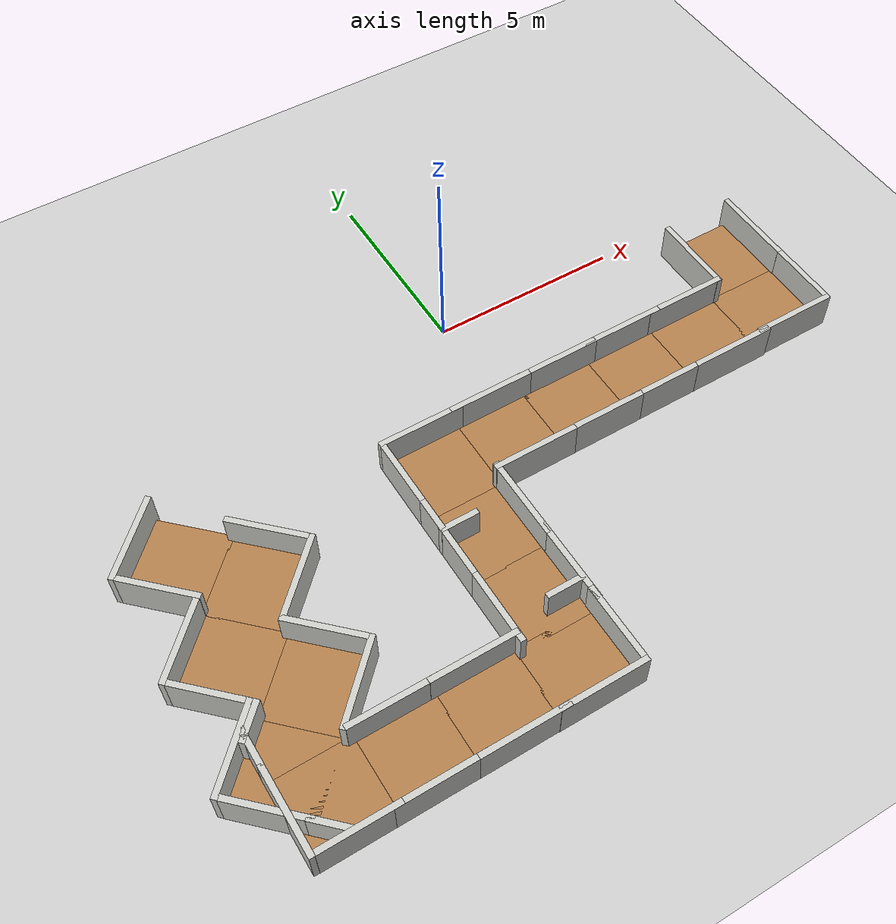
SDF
<sdf version="1.6">
 <world name="default">
  <model name="ground_plane">
   <static>1</static>
   <link name="link">
    <collision name="collision">
     <geometry><plane><normal>0 0 1</normal><size>100 100</size></plane></geometry>
     <surface><friction><ode><mu>100</mu><mu2>50</mu2></ode></friction></surface>
    </collision>
    <visual name="visual">
     <cast_shadows>0</cast_shadows>
     <geometry><plane><normal>0 0 1</normal><size>100 100</size></plane></geometry>
     <material>
      <script><uri>file://media/materials/scripts/gazebo.material</uri><name>Gazebo/Grey</name></script>
     </material>
    </visual>
   </link>
  </model>
  <model name="pg_maze_straight">
   <pose>1.51595 -3.89785 0 0 -0 0</pose>
   <link name="Wall_0">
    <collision name="Wall_0_Collision">
     <geometry><box><size>2.01 2 0.2</size></box></geometry>
     <pose>0 0 0.1 0 -0 0</pose>
    </collision>
    <visual name="Wall_0_Visual">
     <pose>0 0 0.1 0 -0 0</pose>
     <geometry><box><size>2.01 2 0.2</size></box></geometry>
     <material>
      <script><uri>file://media/materials/scripts/gazebo.material</uri><name>Gazebo/Wood</name></script>
      <ambient>1 1 1 1</ambient>
     </material>
     <meta><layer>0</layer></meta>
    </visual>
    <pose>0.003 -0.001 0 0 -0 0</pose>
   </link>
   <link name="Wall_2">
    <collision name="Wall_2_Collision">
     <geometry><box><size>2.25 0.15 1</size></box></geometry>
     <pose>0 0 0.5 0 -0 0</pose>
    </collision>
    <visual name="Wall_2_Visual">
     <pose>0 0 0.5 0 -0 0</pose>
     <geometry><box><size>2.25 0.15 1</size></box></geometry>
     <material>
      <script><uri>file://media/materials/scripts/gazebo.material</uri><name>Gazebo/CeilingTiled</name></script>
      <ambient>0.996078 0.47451 0.0196078 1</ambient>
     </material>
     <meta><layer>0</layer></meta>
    </visual>
    <pose>-0.005 0.985 0 0 -0 0</pose>
   </link>
   <link name="Wall_4">
    <collision name="Wall_4_Collision">
     <geometry><box><size>2.25 0.15 1</size></box></geometry>
     <pose>0 0 0.5 0 -0 0</pose>
    </collision>
    <visual name="Wall_4_Visual">
     <pose>0 0 0.5 0 -0 0</pose>
     <geometry><box><size>2.25 0.15 1</size></box></geometry>
     <material>
      <script><uri>file://media/materials/scripts/gazebo.material</uri><name>Gazebo/CeilingTiled</name></script>
      <ambient>0.996078 0.47451 0.0196078 1</ambient>
     </material>
     <meta><layer>0</layer></meta>
    </visual>
    <pose>0.005 -0.985 0 0 -0 0</pose>
   </link>
   <static>1</static>
  </model>
  <model name="pg_maze_straight_0">
   <pose>-0.420246 -3.89882 0 0 -0 0</pose>
   <link name="Wall_0">
    <collision name="Wall_0_Collision">
     <geometry><box><size>2.01 2 0.2</size></box></geometry>
     <pose>0 0 0.1 0 -0 0</pose>
    </collision>
    <visual name="Wall_0_Visual">
     <pose>0 0 0.1 0 -0 0</pose>
     <geometry><box><size>2.01 2 0.2</size></box></geometry>
     <material>
      <script><uri>file://media/materials/scripts/gazebo.material</uri><name>Gazebo/Wood</name></script>
      <ambient>1 1 1 1</ambient>
     </material>
     <meta><layer>0</layer></meta>
    </visual>
    <pose>0.003 -0.001 0 0 -0 0</pose>
   </link>
   <link name="Wall_2">
    <collision name="Wall_2_Collision">
     <geometry><box><size>2.25 0.15 1</size></box></geometry>
     <pose>0 0 0.5 0 -0 0</pose>
    </collision>
    <visual name="Wall_2_Visual">
     <pose>0 0 0.5 0 -0 0</pose>
     <geometry><box><size>2.25 0.15 1</size></box></geometry>
     <material>
      <script><uri>file://media/materials/scripts/gazebo.material</uri><name>Gazebo/CeilingTiled</name></script>
      <ambient>0.996078 0.47451 0.0196078 1</ambient>
     </material>
     <meta><layer>0</layer></meta>
    </visual>
    <pose>-0.005 0.985 0 0 -0 0</pose>
   </link>
   <link name="Wall_4">
    <collision name="Wall_4_Collision">
     <geometry><box><size>2.25 0.15 1</size></box></geometry>
     <pose>0 0 0.5 0 -0 0</pose>
    </collision>
    <visual name="Wall_4_Visual">
     <pose>0 0 0.5 0 -0 0</pose>
     <geometry><box><size>2.25 0.15 1</size></box></geometry>
     <material>
      <script><uri>file://media/materials/scripts/gazebo.material</uri><name>Gazebo/CeilingTiled</name></script>
      <ambient>0.996078 0.47451 0.0196078 1</ambient>
     </material>
     <meta><layer>0</layer></meta>
    </visual>
    <pose>0.005 -0.985 0 0 -0 0</pose>
   </link>
   <static>1</static>
  </model>
  <model name="pg_maze_corner">
   <pose>-2.37432 -3.9093 0 0 -0 0</pose>
   <link name="Wall_0">
    <collision name="Wall_0_Collision">
     <geometry><box><size>2.01 2 0.2</size></box></geometry>
     <pose>0 0 0.1 0 -0 0</pose>
    </collision>
    <visual name="Wall_0_Visual">
     <pose>0 0 0.1 0 -0 0</pose>
     <geometry><box><size>2.01 2 0.2</size></box></geometry>
     <material>
      <script><uri>file://media/materials/scripts/gazebo.material</uri><name>Gazebo/Wood</name></script>
      <ambient>1 1 1 1</ambient>
     </material>
     <meta><layer>0</layer></meta>
    </visual>
    <pose>0.009575 0.005575 0 0 -0 0</pose>
   </link>
   <link name="Wall_2">
    <collision name="Wall_2_Collision">
     <geometry><box><size>2.25 0.15 1</size></box></geometry>
     <pose>0 0 0.5 0 -0 0</pose>
    </collision>
    <visual name="Wall_2_Visual">
     <pose>0 0 0.5 0 -0 0</pose>
     <geometry><box><size>2.25 0.15 1</size></box></geometry>
     <material>
      <script><uri>file://media/materials/scripts/gazebo.material</uri><name>Gazebo/CeilingTiled</name></script>
      <ambient>0.996078 0.47451 0.0196078 1</ambient>
     </material>
     <meta><layer>0</layer></meta>
    </visual>
    <pose>0.001575 0.991575 0 0 -0 0</pose>
   </link>
   <link name="Wall_4">
    <collision name="Wall_4_Collision">
     <geometry><box><size>2 0.15 1</size></box></geometry>
     <pose>0 0 0.5 0 -0 0</pose>
    </collision>
    <visual name="Wall_4_Visual">
     <pose>0 0 0.5 0 -0 0</pose>
     <geometry><box><size>2 0.15 1</size></box></geometry>
     <material>
      <script><uri>file://media/materials/scripts/gazebo.material</uri><name>Gazebo/CeilingTiled</name></script>
      <ambient>0.996078 0.47451 0.0196078 1</ambient>
     </material>
     <meta><layer>0</layer></meta>
    </visual>
    <pose>-1.05157 -0.066575 0 0 -0 1.5708</pose>
   </link>
   <static>1</static>
  </model>
  <model name="pg_maze_straight_1">
   <pose>-2.44128 -5.90392 0 0 -0 1.5708</pose>
   <link name="Wall_0">
    <collision name="Wall_0_Collision">
     <geometry><box><size>2.01 2 0.2</size></box></geometry>
     <pose>0 0 0.1 0 -0 0</pose>
    </collision>
    <visual name="Wall_0_Visual">
     <pose>0 0 0.1 0 -0 0</pose>
     <geometry><box><size>2.01 2 0.2</size></box></geometry>
     <material>
      <script><uri>file://media/materials/scripts/gazebo.material</uri><name>Gazebo/Wood</name></script>
      <ambient>1 1 1 1</ambient>
     </material>
     <meta><layer>0</layer></meta>
    </visual>
    <pose>0.003 -0.001 0 0 -0 0</pose>
   </link>
   <link name="Wall_2">
    <collision name="Wall_2_Collision">
     <geometry><box><size>2.25 0.15 1</size></box></geometry>
     <pose>0 0 0.5 0 -0 0</pose>
    </collision>
    <visual name="Wall_2_Visual">
     <pose>0 0 0.5 0 -0 0</pose>
     <geometry><box><size>2.25 0.15 1</size></box></geometry>
     <material>
      <script><uri>file://media/materials/scripts/gazebo.material</uri><name>Gazebo/CeilingTiled</name></script>
      <ambient>0.996078 0.47451 0.0196078 1</ambient>
     </material>
     <meta><layer>0</layer></meta>
    </visual>
    <pose>-0.005 0.985 0 0 -0 0</pose>
   </link>
   <link name="Wall_4">
    <collision name="Wall_4_Collision">
     <geometry><box><size>2.25 0.15 1</size></box></geometry>
     <pose>0 0 0.5 0 -0 0</pose>
    </collision>
    <visual name="Wall_4_Visual">
     <pose>0 0 0.5 0 -0 0</pose>
     <geometry><box><size>2.25 0.15 1</size></box></geometry>
     <material>
      <script><uri>file://media/materials/scripts/gazebo.material</uri><name>Gazebo/CeilingTiled</name></script>
      <ambient>0.996078 0.47451 0.0196078 1</ambient>
     </material>
     <meta><layer>0</layer></meta>
    </visual>
    <pose>0.005 -0.985 0 0 -0 0</pose>
   </link>
   <static>1</static>
  </model>
  <model name="pg_maze_straight_1_clone">
   <pose>-2.44005 -7.87477 0 0 -0 1.5708</pose>
   <link name="Wall_0">
    <collision name="Wall_0_Collision">
     <geometry><box><size>2.01 2 0.2</size></box></geometry>
     <pose>0 0 0.1 0 -0 0</pose>
    </collision>
    <visual name="Wall_0_Visual">
     <pose>0 0 0.1 0 -0 0</pose>
     <geometry><box><size>2.01 2 0.2</size></box></geometry>
     <material>
      <script><uri>file://media/materials/scripts/gazebo.material</uri><name>Gazebo/Wood</name></script>
      <ambient>1 1 1 1</ambient>
     </material>
     <meta><layer>0</layer></meta>
    </visual>
    <pose>0.003 -0.001 0 0 -0 0</pose>
   </link>
   <link name="Wall_2">
    <collision name="Wall_2_Collision">
     <geometry><box><size>2.25 0.15 1</size></box></geometry>
     <pose>0 0 0.5 0 -0 0</pose>
    </collision>
    <visual name="Wall_2_Visual">
     <pose>0 0 0.5 0 -0 0</pose>
     <geometry><box><size>2.25 0.15 1</size></box></geometry>
     <material>
      <script><uri>file://media/materials/scripts/gazebo.material</uri><name>Gazebo/CeilingTiled</name></script>
      <ambient>0.996078 0.47451 0.0196078 1</ambient>
     </material>
     <meta><layer>0</layer></meta>
    </visual>
    <pose>-0.005 0.985 0 0 -0 0</pose>
   </link>
   <link name="Wall_4">
    <collision name="Wall_4_Collision">
     <geometry><box><size>2.25 0.15 1</size></box></geometry>
     <pose>0 0 0.5 0 -0 0</pose>
    </collision>
    <visual name="Wall_4_Visual">
     <pose>0 0 0.5 0 -0 0</pose>
     <geometry><box><size>2.25 0.15 1</size></box></geometry>
     <material>
      <script><uri>file://media/materials/scripts/gazebo.material</uri><name>Gazebo/CeilingTiled</name></script>
      <ambient>0.996078 0.47451 0.0196078 1</ambient>
     </material>
     <meta><layer>0</layer></meta>
    </visual>
    <pose>0.005 -0.985 0 0 -0 0</pose>
   </link>
   <static>1</static>
  </model>
  <model name="pg_maze_corner_0">
   <pose>-2.51891 -9.72043 0 0 0 -3.14159</pose>
   <link name="Wall_0">
    <collision name="Wall_0_Collision">
     <geometry><box><size>2.01 2 0.2</size></box></geometry>
     <pose>0 0 0.1 0 -0 0</pose>
    </collision>
    <visual name="Wall_0_Visual">
     <pose>0 0 0.1 0 -0 0</pose>
     <geometry><box><size>2.01 2 0.2</size></box></geometry>
     <material>
      <script><uri>file://media/materials/scripts/gazebo.material</uri><name>Gazebo/Wood</name></script>
      <ambient>1 1 1 1</ambient>
     </material>
     <meta><layer>0</layer></meta>
    </visual>
    <pose>0.009575 0.005575 0 0 -0 0</pose>
   </link>
   <link name="Wall_2">
    <collision name="Wall_2_Collision">
     <geometry><box><size>2.25 0.15 1</size></box></geometry>
     <pose>0 0 0.5 0 -0 0</pose>
    </collision>
    <visual name="Wall_2_Visual">
     <pose>0 0 0.5 0 -0 0</pose>
     <geometry><box><size>2.25 0.15 1</size></box></geometry>
     <material>
      <script><uri>file://media/materials/scripts/gazebo.material</uri><name>Gazebo/CeilingTiled</name></script>
      <ambient>0.996078 0.47451 0.0196078 1</ambient>
     </material>
     <meta><layer>0</layer></meta>
    </visual>
    <pose>0.001575 0.991575 0 0 -0 0</pose>
   </link>
   <link name="Wall_4">
    <collision name="Wall_4_Collision">
     <geometry><box><size>2 0.15 1</size></box></geometry>
     <pose>0 0 0.5 0 -0 0</pose>
    </collision>
    <visual name="Wall_4_Visual">
     <pose>0 0 0.5 0 -0 0</pose>
     <geometry><box><size>2 0.15 1</size></box></geometry>
     <material>
      <script><uri>file://media/materials/scripts/gazebo.material</uri><name>Gazebo/CeilingTiled</name></script>
      <ambient>0.996078 0.47451 0.0196078 1</ambient>
     </material>
     <meta><layer>0</layer></meta>
    </visual>
    <pose>-1.05157 -0.066575 0 0 -0 1.5708</pose>
   </link>
   <static>1</static>
  </model>
  <model name="pg_maze_obstacle">
   <pose>-3.00422 -5.68975 0 0 -0 0</pose>
   <link name="Wall_2">
    <collision name="Wall_2_Collision">
     <geometry><box><size>1 0.15 1</size></box></geometry>
     <pose>0 0 0.5 0 -0 0</pose>
    </collision>
    <visual name="Wall_2_Visual">
     <pose>0 0 0.5 0 -0 0</pose>
     <geometry><box><size>1 0.15 1</size></box></geometry>
     <material>
      <script><uri>file://media/materials/scripts/gazebo.material</uri><name>Gazebo/CeilingTiled</name></script>
      <ambient>0.996078 0.47451 0.0196078 1</ambient>
     </material>
     <meta><layer>0</layer></meta>
    </visual>
   </link>
   <static>1</static>
  </model>
  <model name="pg_maze_obstacle_0">
   <pose>-1.9083 -8.35012 0 0 -0 0</pose>
   <link name="Wall_2">
    <collision name="Wall_2_Collision">
     <geometry><box><size>1 0.15 1</size></box></geometry>
     <pose>0 0 0.5 0 -0 0</pose>
    </collision>
    <visual name="Wall_2_Visual">
     <pose>0 0 0.5 0 -0 0</pose>
     <geometry><box><size>1 0.15 1</size></box></geometry>
     <material>
      <script><uri>file://media/materials/scripts/gazebo.material</uri><name>Gazebo/CeilingTiled</name></script>
      <ambient>0.996078 0.47451 0.0196078 1</ambient>
     </material>
     <meta><layer>0</layer></meta>
    </visual>
   </link>
   <static>1</static>
  </model>
  <model name="pg_maze_straight_2">
   <pose>3.46221 -3.89407 0 0 -0 0</pose>
   <link name="Wall_0">
    <collision name="Wall_0_Collision">
     <geometry><box><size>2.01 2 0.2</size></box></geometry>
     <pose>0 0 0.1 0 -0 0</pose>
    </collision>
    <visual name="Wall_0_Visual">
     <pose>0 0 0.1 0 -0 0</pose>
     <geometry><box><size>2.01 2 0.2</size></box></geometry>
     <material>
      <script><uri>file://media/materials/scripts/gazebo.material</uri><name>Gazebo/Wood</name></script>
      <ambient>1 1 1 1</ambient>
     </material>
     <meta><layer>0</layer></meta>
    </visual>
    <pose>0.003 -0.001 0 0 -0 0</pose>
   </link>
   <link name="Wall_2">
    <collision name="Wall_2_Collision">
     <geometry><box><size>2.25 0.15 1</size></box></geometry>
     <pose>0 0 0.5 0 -0 0</pose>
    </collision>
    <visual name="Wall_2_Visual">
     <pose>0 0 0.5 0 -0 0</pose>
     <geometry><box><size>2.25 0.15 1</size></box></geometry>
     <material>
      <script><uri>file://media/materials/scripts/gazebo.material</uri><name>Gazebo/CeilingTiled</name></script>
      <ambient>0.996078 0.47451 0.0196078 1</ambient>
     </material>
     <meta><layer>0</layer></meta>
    </visual>
    <pose>-0.005 0.985 0 0 -0 0</pose>
   </link>
   <link name="Wall_4">
    <collision name="Wall_4_Collision">
     <geometry><box><size>2.25 0.15 1</size></box></geometry>
     <pose>0 0 0.5 0 -0 0</pose>
    </collision>
    <visual name="Wall_4_Visual">
     <pose>0 0 0.5 0 -0 0</pose>
     <geometry><box><size>2.25 0.15 1</size></box></geometry>
     <material>
      <script><uri>file://media/materials/scripts/gazebo.material</uri><name>Gazebo/CeilingTiled</name></script>
      <ambient>0.996078 0.47451 0.0196078 1</ambient>
     </material>
     <meta><layer>0</layer></meta>
    </visual>
    <pose>0.005 -0.985 0 0 -0 0</pose>
   </link>
   <static>1</static>
  </model>
  <model name="pg_maze_straight_3">
   <pose>5.41322 -3.89645 0 0 -0 0</pose>
   <link name="Wall_0">
    <collision name="Wall_0_Collision">
     <geometry><box><size>2.01 2 0.2</size></box></geometry>
     <pose>0 0 0.1 0 -0 0</pose>
    </collision>
    <visual name="Wall_0_Visual">
     <pose>0 0 0.1 0 -0 0</pose>
     <geometry><box><size>2.01 2 0.2</size></box></geometry>
     <material>
      <script><uri>file://media/materials/scripts/gazebo.material</uri><name>Gazebo/Wood</name></script>
      <ambient>1 1 1 1</ambient>
     </material>
     <meta><layer>0</layer></meta>
    </visual>
    <pose>0.003 -0.001 0 0 -0 0</pose>
   </link>
   <link name="Wall_2">
    <collision name="Wall_2_Collision">
     <geometry><box><size>2.25 0.15 1</size></box></geometry>
     <pose>0 0 0.5 0 -0 0</pose>
    </collision>
    <visual name="Wall_2_Visual">
     <pose>0 0 0.5 0 -0 0</pose>
     <geometry><box><size>2.25 0.15 1</size></box></geometry>
     <material>
      <script><uri>file://media/materials/scripts/gazebo.material</uri><name>Gazebo/CeilingTiled</name></script>
      <ambient>0.996078 0.47451 0.0196078 1</ambient>
     </material>
     <meta><layer>0</layer></meta>
    </visual>
    <pose>-0.005 0.985 0 0 -0 0</pose>
   </link>
   <link name="Wall_4">
    <collision name="Wall_4_Collision">
     <geometry><box><size>2.25 0.15 1</size></box></geometry>
     <pose>0 0 0.5 0 -0 0</pose>
    </collision>
    <visual name="Wall_4_Visual">
     <pose>0 0 0.5 0 -0 0</pose>
     <geometry><box><size>2.25 0.15 1</size></box></geometry>
     <material>
      <script><uri>file://media/materials/scripts/gazebo.material</uri><name>Gazebo/CeilingTiled</name></script>
      <ambient>0.996078 0.47451 0.0196078 1</ambient>
     </material>
     <meta><layer>0</layer></meta>
    </visual>
    <pose>0.005 -0.985 0 0 -0 0</pose>
   </link>
   <static>1</static>
  </model>
  <model name="pg_maze_straight_4">
   <pose>7.45028 -1.8642 0 0 0 -1.5708</pose>
   <link name="Wall_0">
    <collision name="Wall_0_Collision">
     <geometry><box><size>2.01 2 0.2</size></box></geometry>
     <pose>0 0 0.1 0 -0 0</pose>
    </collision>
    <visual name="Wall_0_Visual">
     <pose>0 0 0.1 0 -0 0</pose>
     <geometry><box><size>2.01 2 0.2</size></box></geometry>
     <material>
      <script><uri>file://media/materials/scripts/gazebo.material</uri><name>Gazebo/Wood</name></script>
      <ambient>1 1 1 1</ambient>
     </material>
     <meta><layer>0</layer></meta>
    </visual>
    <pose>0.003 -0.001 0 0 -0 0</pose>
   </link>
   <link name="Wall_2">
    <collision name="Wall_2_Collision">
     <geometry><box><size>2.25 0.15 1</size></box></geometry>
     <pose>0 0 0.5 0 -0 0</pose>
    </collision>
    <visual name="Wall_2_Visual">
     <pose>0 0 0.5 0 -0 0</pose>
     <geometry><box><size>2.25 0.15 1</size></box></geometry>
     <material>
      <script><uri>file://media/materials/scripts/gazebo.material</uri><name>Gazebo/CeilingTiled</name></script>
      <ambient>0.996078 0.47451 0.0196078 1</ambient>
     </material>
     <meta><layer>0</layer></meta>
    </visual>
    <pose>-0.005 0.985 0 0 -0 0</pose>
   </link>
   <link name="Wall_4">
    <collision name="Wall_4_Collision">
     <geometry><box><size>2.25 0.15 1</size></box></geometry>
     <pose>0 0 0.5 0 -0 0</pose>
    </collision>
    <visual name="Wall_4_Visual">
     <pose>0 0 0.5 0 -0 0</pose>
     <geometry><box><size>2.25 0.15 1</size></box></geometry>
     <material>
      <script><uri>file://media/materials/scripts/gazebo.material</uri><name>Gazebo/CeilingTiled</name></script>
      <ambient>0.996078 0.47451 0.0196078 1</ambient>
     </material>
     <meta><layer>0</layer></meta>
    </visual>
    <pose>0.005 -0.985 0 0 -0 0</pose>
   </link>
   <static>1</static>
  </model>
  <model name="pg_maze_straight_clone">
   <pose>-4.48601 -9.71835 0 0 -0 0</pose>
   <link name="Wall_0">
    <collision name="Wall_0_Collision">
     <geometry><box><size>2.01 2 0.2</size></box></geometry>
     <pose>0 0 0.1 0 -0 0</pose>
    </collision>
    <visual name="Wall_0_Visual">
     <pose>0 0 0.1 0 -0 0</pose>
     <geometry><box><size>2.01 2 0.2</size></box></geometry>
     <material>
      <script><uri>file://media/materials/scripts/gazebo.material</uri><name>Gazebo/Wood</name></script>
      <ambient>1 1 1 1</ambient>
     </material>
     <meta><layer>0</layer></meta>
    </visual>
    <pose>0.003 -0.001 0 0 -0 0</pose>
   </link>
   <link name="Wall_2">
    <collision name="Wall_2_Collision">
     <geometry><box><size>2.25 0.15 1</size></box></geometry>
     <pose>0 0 0.5 0 -0 0</pose>
    </collision>
    <visual name="Wall_2_Visual">
     <pose>0 0 0.5 0 -0 0</pose>
     <geometry><box><size>2.25 0.15 1</size></box></geometry>
     <material>
      <script><uri>file://media/materials/scripts/gazebo.material</uri><name>Gazebo/CeilingTiled</name></script>
      <ambient>0.996078 0.47451 0.0196078 1</ambient>
     </material>
     <meta><layer>0</layer></meta>
    </visual>
    <pose>-0.005 0.985 0 0 -0 0</pose>
   </link>
   <link name="Wall_4">
    <collision name="Wall_4_Collision">
     <geometry><box><size>2.25 0.15 1</size></box></geometry>
     <pose>0 0 0.5 0 -0 0</pose>
    </collision>
    <visual name="Wall_4_Visual">
     <pose>0 0 0.5 0 -0 0</pose>
     <geometry><box><size>2.25 0.15 1</size></box></geometry>
     <material>
      <script><uri>file://media/materials/scripts/gazebo.material</uri><name>Gazebo/CeilingTiled</name></script>
      <ambient>0.996078 0.47451 0.0196078 1</ambient>
     </material>
     <meta><layer>0</layer></meta>
    </visual>
    <pose>0.005 -0.985 0 0 -0 0</pose>
   </link>
   <static>1</static>
  </model>
  <model name="pg_maze_corner_0_clone_0">
   <pose>-8.41113 -9.64636 0 0 -0 1.5708</pose>
   <link name="Wall_0">
    <collision name="Wall_0_Collision">
     <geometry><box><size>2.01 2 0.2</size></box></geometry>
     <pose>0 0 0.1 0 -0 0</pose>
    </collision>
    <visual name="Wall_0_Visual">
     <pose>0 0 0.1 0 -0 0</pose>
     <geometry><box><size>2.01 2 0.2</size></box></geometry>
     <material>
      <script><uri>file://media/materials/scripts/gazebo.material</uri><name>Gazebo/Wood</name></script>
      <ambient>1 1 1 1</ambient>
     </material>
     <meta><layer>0</layer></meta>
    </visual>
    <pose>0.009575 0.005575 0 0 -0 0</pose>
   </link>
   <link name="Wall_2">
    <collision name="Wall_2_Collision">
     <geometry><box><size>2.25 0.15 1</size></box></geometry>
     <pose>0 0 0.5 0 -0 0</pose>
    </collision>
    <visual name="Wall_2_Visual">
     <pose>0 0 0.5 0 -0 0</pose>
     <geometry><box><size>2.25 0.15 1</size></box></geometry>
     <material>
      <script><uri>file://media/materials/scripts/gazebo.material</uri><name>Gazebo/CeilingTiled</name></script>
      <ambient>0.996078 0.47451 0.0196078 1</ambient>
     </material>
     <meta><layer>0</layer></meta>
    </visual>
    <pose>0.001575 0.991575 0 0 -0 0</pose>
   </link>
   <link name="Wall_4">
    <collision name="Wall_4_Collision">
     <geometry><box><size>2 0.15 1</size></box></geometry>
     <pose>0 0 0.5 0 -0 0</pose>
    </collision>
    <visual name="Wall_4_Visual">
     <pose>0 0 0.5 0 -0 0</pose>
     <geometry><box><size>2 0.15 1</size></box></geometry>
     <material>
      <script><uri>file://media/materials/scripts/gazebo.material</uri><name>Gazebo/CeilingTiled</name></script>
      <ambient>0.996078 0.47451 0.0196078 1</ambient>
     </material>
     <meta><layer>0</layer></meta>
    </visual>
    <pose>-1.05157 -0.066575 0 0 -0 1.5708</pose>
   </link>
   <static>1</static>
  </model>
  <model name="pg_maze_straight_clone_clone">
   <pose>-6.46761 -9.71466 0 0 -0 0</pose>
   <link name="Wall_0">
    <collision name="Wall_0_Collision">
     <geometry><box><size>2.01 2 0.2</size></box></geometry>
     <pose>0 0 0.1 0 -0 0</pose>
    </collision>
    <visual name="Wall_0_Visual">
     <pose>0 0 0.1 0 -0 0</pose>
     <geometry><box><size>2.01 2 0.2</size></box></geometry>
     <material>
      <script><uri>file://media/materials/scripts/gazebo.material</uri><name>Gazebo/Wood</name></script>
      <ambient>1 1 1 1</ambient>
     </material>
     <meta><layer>0</layer></meta>
    </visual>
    <pose>0.003 -0.001 0 0 -0 0</pose>
   </link>
   <link name="Wall_2">
    <collision name="Wall_2_Collision">
     <geometry><box><size>2.25 0.15 1</size></box></geometry>
     <pose>0 0 0.5 0 -0 0</pose>
    </collision>
    <visual name="Wall_2_Visual">
     <pose>0 0 0.5 0 -0 0</pose>
     <geometry><box><size>2.25 0.15 1</size></box></geometry>
     <material>
      <script><uri>file://media/materials/scripts/gazebo.material</uri><name>Gazebo/CeilingTiled</name></script>
      <ambient>0.996078 0.47451 0.0196078 1</ambient>
     </material>
     <meta><layer>0</layer></meta>
    </visual>
    <pose>-0.005 0.985 0 0 -0 0</pose>
   </link>
   <link name="Wall_4">
    <collision name="Wall_4_Collision">
     <geometry><box><size>2.25 0.15 1</size></box></geometry>
     <pose>0 0 0.5 0 -0 0</pose>
    </collision>
    <visual name="Wall_4_Visual">
     <pose>0 0 0.5 0 -0 0</pose>
     <geometry><box><size>2.25 0.15 1</size></box></geometry>
     <material>
      <script><uri>file://media/materials/scripts/gazebo.material</uri><name>Gazebo/CeilingTiled</name></script>
      <ambient>0.996078 0.47451 0.0196078 1</ambient>
     </material>
     <meta><layer>0</layer></meta>
    </visual>
    <pose>0.005 -0.985 0 0 -0 0</pose>
   </link>
   <static>1</static>
  </model>
  <model name="pg_maze_corner_0_clone_0_clone">
   <pose>-7.55166 -7.25441 0 0 0 -2.35619</pose>
   <link name="Wall_0">
    <collision name="Wall_0_Collision">
     <geometry><box><size>2.01 2 0.2</size></box></geometry>
     <pose>0 0 0.1 0 -0 0</pose>
    </collision>
    <visual name="Wall_0_Visual">
     <pose>0 0 0.1 0 -0 0</pose>
     <geometry><box><size>2.01 2 0.2</size></box></geometry>
     <material>
      <script><uri>file://media/materials/scripts/gazebo.material</uri><name>Gazebo/Wood</name></script>
      <ambient>1 1 1 1</ambient>
     </material>
     <meta><layer>0</layer></meta>
    </visual>
    <pose>0.009575 0.005575 0 0 -0 0</pose>
   </link>
   <link name="Wall_2">
    <collision name="Wall_2_Collision">
     <geometry><box><size>2.25 0.15 1</size></box></geometry>
     <pose>0 0 0.5 0 -0 0</pose>
    </collision>
    <visual name="Wall_2_Visual">
     <pose>0 0 0.5 0 -0 0</pose>
     <geometry><box><size>2.25 0.15 1</size></box></geometry>
     <material>
      <script><uri>file://media/materials/scripts/gazebo.material</uri><name>Gazebo/CeilingTiled</name></script>
      <ambient>0.996078 0.47451 0.0196078 1</ambient>
     </material>
     <meta><layer>0</layer></meta>
    </visual>
    <pose>0.001575 0.991575 0 0 -0 0</pose>
   </link>
   <link name="Wall_4">
    <collision name="Wall_4_Collision">
     <geometry><box><size>2 0.15 1</size></box></geometry>
     <pose>0 0 0.5 0 -0 0</pose>
    </collision>
    <visual name="Wall_4_Visual">
     <pose>0 0 0.5 0 -0 0</pose>
     <geometry><box><size>2 0.15 1</size></box></geometry>
     <material>
      <script><uri>file://media/materials/scripts/gazebo.material</uri><name>Gazebo/CeilingTiled</name></script>
      <ambient>0.996078 0.47451 0.0196078 1</ambient>
     </material>
     <meta><layer>0</layer></meta>
    </visual>
    <pose>-1.05157 -0.066575 0 0 -0 1.5708</pose>
   </link>
   <static>1</static>
  </model>
  <model name="pg_maze_corner_0_clone_0_clone_clone">
   <pose>-9.01527 -8.62073 0 0 -0 0.785403</pose>
   <link name="Wall_0">
    <collision name="Wall_0_Collision">
     <geometry><box><size>2.01 2 0.2</size></box></geometry>
     <pose>0 0 0.1 0 -0 0</pose>
    </collision>
    <visual name="Wall_0_Visual">
     <pose>0 0 0.1 0 -0 0</pose>
     <geometry><box><size>2.01 2 0.2</size></box></geometry>
     <material>
      <script><uri>file://media/materials/scripts/gazebo.material</uri><name>Gazebo/Wood</name></script>
      <ambient>1 1 1 1</ambient>
     </material>
     <meta><layer>0</layer></meta>
    </visual>
    <pose>0.009575 0.005575 0 0 -0 0</pose>
   </link>
   <link name="Wall_2">
    <collision name="Wall_2_Collision">
     <geometry><box><size>2.25 0.15 1</size></box></geometry>
     <pose>0 0 0.5 0 -0 0</pose>
    </collision>
    <visual name="Wall_2_Visual">
     <pose>0 0 0.5 0 -0 0</pose>
     <geometry><box><size>2.25 0.15 1</size></box></geometry>
     <material>
      <script><uri>file://media/materials/scripts/gazebo.material</uri><name>Gazebo/CeilingTiled</name></script>
      <ambient>0.996078 0.47451 0.0196078 1</ambient>
     </material>
     <meta><layer>0</layer></meta>
    </visual>
    <pose>0.001575 0.991575 0 0 -0 0</pose>
   </link>
   <link name="Wall_4">
    <collision name="Wall_4_Collision">
     <geometry><box><size>2 0.15 1</size></box></geometry>
     <pose>0 0 0.5 0 -0 0</pose>
    </collision>
    <visual name="Wall_4_Visual">
     <pose>0 0 0.5 0 -0 0</pose>
     <geometry><box><size>2 0.15 1</size></box></geometry>
     <material>
      <script><uri>file://media/materials/scripts/gazebo.material</uri><name>Gazebo/CeilingTiled</name></script>
      <ambient>0.996078 0.47451 0.0196078 1</ambient>
     </material>
     <meta><layer>0</layer></meta>
    </visual>
    <pose>-1.05157 -0.066575 0 0 -0 1.5708</pose>
   </link>
   <static>1</static>
  </model>
  <model name="pg_maze_obstacle_1">
   <pose>-8.78198 -10.3439 0 0 0 -0.785398</pose>
   <link name="Wall_2">
    <collision name="Wall_2_Collision">
     <geometry><box><size>1 0.15 1</size></box></geometry>
     <pose>0 0 0.5 0 -0 0</pose>
    </collision>
    <visual name="Wall_2_Visual">
     <pose>0 0 0.5 0 -0 0</pose>
     <geometry><box><size>1 0.15 1</size></box></geometry>
     <material>
      <script><uri>file://media/materials/scripts/gazebo.material</uri><name>Gazebo/CeilingTiled</name></script>
      <ambient>0.996078 0.47451 0.0196078 1</ambient>
     </material>
     <meta><layer>0</layer></meta>
    </visual>
   </link>
   <static>1</static>
  </model>
  <model name="pg_maze_obstacle_1_clone">
   <pose>-9.39916 -8.07799 0 0 0 -1.5708</pose>
   <link name="Wall_2">
    <collision name="Wall_2_Collision">
     <geometry><box><size>1 0.15 1</size></box></geometry>
     <pose>0 0 0.5 0 -0 0</pose>
    </collision>
    <visual name="Wall_2_Visual">
     <pose>0 0 0.5 0 -0 0</pose>
     <geometry><box><size>1 0.15 1</size></box></geometry>
     <material>
      <script><uri>file://media/materials/scripts/gazebo.material</uri><name>Gazebo/CeilingTiled</name></script>
      <ambient>0.996078 0.47451 0.0196078 1</ambient>
     </material>
     <meta><layer>0</layer></meta>
    </visual>
   </link>
   <static>1</static>
  </model>
  <model name="pg_maze_corner_0_clone_0_clone_clone_0">
   <pose>-8.86355 -5.79245 0 0 -0 0.785403</pose>
   <link name="Wall_0">
    <collision name="Wall_0_Collision">
     <geometry><box><size>2.01 2 0.2</size></box></geometry>
     <pose>0 0 0.1 0 -0 0</pose>
    </collision>
    <visual name="Wall_0_Visual">
     <pose>0 0 0.1 0 -0 0</pose>
     <geometry><box><size>2.01 2 0.2</size></box></geometry>
     <material>
      <script><uri>file://media/materials/scripts/gazebo.material</uri><name>Gazebo/Wood</name></script>
      <ambient>1 1 1 1</ambient>
     </material>
     <meta><layer>0</layer></meta>
    </visual>
    <pose>0.009575 0.005575 0 0 -0 0</pose>
   </link>
   <link name="Wall_2">
    <collision name="Wall_2_Collision">
     <geometry><box><size>2.25 0.15 1</size></box></geometry>
     <pose>0 0 0.5 0 -0 0</pose>
    </collision>
    <visual name="Wall_2_Visual">
     <pose>0 0 0.5 0 -0 0</pose>
     <geometry><box><size>2.25 0.15 1</size></box></geometry>
     <material>
      <script><uri>file://media/materials/scripts/gazebo.material</uri><name>Gazebo/CeilingTiled</name></script>
      <ambient>0.996078 0.47451 0.0196078 1</ambient>
     </material>
     <meta><layer>0</layer></meta>
    </visual>
    <pose>0.001575 0.991575 0 0 -0 0</pose>
   </link>
   <link name="Wall_4">
    <collision name="Wall_4_Collision">
     <geometry><box><size>2 0.15 1</size></box></geometry>
     <pose>0 0 0.5 0 -0 0</pose>
    </collision>
    <visual name="Wall_4_Visual">
     <pose>0 0 0.5 0 -0 0</pose>
     <geometry><box><size>2 0.15 1</size></box></geometry>
     <material>
      <script><uri>file://media/materials/scripts/gazebo.material</uri><name>Gazebo/CeilingTiled</name></script>
      <ambient>0.996078 0.47451 0.0196078 1</ambient>
     </material>
     <meta><layer>0</layer></meta>
    </visual>
    <pose>-1.05157 -0.066575 0 0 -0 1.5708</pose>
   </link>
   <static>1</static>
  </model>
  <model name="pg_maze_corner_0_clone_0_clone_clone_1">
   <pose>-7.46134 -4.3553 0 0 0 -2.35619</pose>
   <link name="Wall_0">
    <collision name="Wall_0_Collision">
     <geometry><box><size>2.01 2 0.2</size></box></geometry>
     <pose>0 0 0.1 0 -0 0</pose>
    </collision>
    <visual name="Wall_0_Visual">
     <pose>0 0 0.1 0 -0 0</pose>
     <geometry><box><size>2.01 2 0.2</size></box></geometry>
     <material>
      <script><uri>file://media/materials/scripts/gazebo.material</uri><name>Gazebo/Wood</name></script>
      <ambient>1 1 1 1</ambient>
     </material>
     <meta><layer>0</layer></meta>
    </visual>
    <pose>0.009575 0.005575 0 0 -0 0</pose>
   </link>
   <link name="Wall_2">
    <collision name="Wall_2_Collision">
     <geometry><box><size>2.25 0.15 1</size></box></geometry>
     <pose>0 0 0.5 0 -0 0</pose>
    </collision>
    <visual name="Wall_2_Visual">
     <pose>0 0 0.5 0 -0 0</pose>
     <geometry><box><size>2.25 0.15 1</size></box></geometry>
     <material>
      <script><uri>file://media/materials/scripts/gazebo.material</uri><name>Gazebo/CeilingTiled</name></script>
      <ambient>0.996078 0.47451 0.0196078 1</ambient>
     </material>
     <meta><layer>0</layer></meta>
    </visual>
    <pose>0.001575 0.991575 0 0 -0 0</pose>
   </link>
   <link name="Wall_4">
    <collision name="Wall_4_Collision">
     <geometry><box><size>2 0.15 1</size></box></geometry>
     <pose>0 0 0.5 0 -0 0</pose>
    </collision>
    <visual name="Wall_4_Visual">
     <pose>0 0 0.5 0 -0 0</pose>
     <geometry><box><size>2 0.15 1</size></box></geometry>
     <material>
      <script><uri>file://media/materials/scripts/gazebo.material</uri><name>Gazebo/CeilingTiled</name></script>
      <ambient>0.996078 0.47451 0.0196078 1</ambient>
     </material>
     <meta><layer>0</layer></meta>
    </visual>
    <pose>-1.05157 -0.066575 0 0 -0 1.5708</pose>
   </link>
   <static>1</static>
  </model>
  <model name="pg_maze_corner_0_clone_0_clone_clone_0_clone">
   <pose>-8.76693 -2.90083 0 0 -0 0.785403</pose>
   <link name="Wall_0">
    <collision name="Wall_0_Collision">
     <geometry><box><size>2.01 2 0.2</size></box></geometry>
     <pose>0 0 0.1 0 -0 0</pose>
    </collision>
    <visual name="Wall_0_Visual">
     <pose>0 0 0.1 0 -0 0</pose>
     <geometry><box><size>2.01 2 0.2</size></box></geometry>
     <material>
      <script><uri>file://media/materials/scripts/gazebo.material</uri><name>Gazebo/Wood</name></script>
      <ambient>1 1 1 1</ambient>
     </material>
     <meta><layer>0</layer></meta>
    </visual>
    <pose>0.009575 0.005575 0 0 -0 0</pose>
   </link>
   <link name="Wall_2">
    <collision name="Wall_2_Collision">
     <geometry><box><size>2.25 0.15 1</size></box></geometry>
     <pose>0 0 0.5 0 -0 0</pose>
    </collision>
    <visual name="Wall_2_Visual">
     <pose>0 0 0.5 0 -0 0</pose>
     <geometry><box><size>2.25 0.15 1</size></box></geometry>
     <material>
      <script><uri>file://media/materials/scripts/gazebo.material</uri><name>Gazebo/CeilingTiled</name></script>
      <ambient>0.996078 0.47451 0.0196078 1</ambient>
     </material>
     <meta><layer>0</layer></meta>
    </visual>
    <pose>0.001575 0.991575 0 0 -0 0</pose>
   </link>
   <link name="Wall_4">
    <collision name="Wall_4_Collision">
     <geometry><box><size>2 0.15 1</size></box></geometry>
     <pose>0 0 0.5 0 -0 0</pose>
    </collision>
    <visual name="Wall_4_Visual">
     <pose>0 0 0.5 0 -0 0</pose>
     <geometry><box><size>2 0.15 1</size></box></geometry>
     <material>
      <script><uri>file://media/materials/scripts/gazebo.material</uri><name>Gazebo/CeilingTiled</name></script>
      <ambient>0.996078 0.47451 0.0196078 1</ambient>
     </material>
     <meta><layer>0</layer></meta>
    </visual>
    <pose>-1.05157 -0.066575 0 0 -0 1.5708</pose>
   </link>
   <static>1</static>
  </model>
  <model name="pg_maze_obstacle_2">
   <pose>-9.16987 -7.57548 0 0 -0 0.785398</pose>
   <link name="Wall_2">
    <collision name="Wall_2_Collision">
     <geometry><box><size>1 0.15 1</size></box></geometry>
     <pose>0 0 0.5 0 -0 0</pose>
    </collision>
    <visual name="Wall_2_Visual">
     <pose>0 0 0.5 0 -0 0</pose>
     <geometry><box><size>1 0.15 1</size></box></geometry>
     <material>
      <script><uri>file://media/materials/scripts/gazebo.material</uri><name>Gazebo/CeilingTiled</name></script>
      <ambient>0.996078 0.47451 0.0196078 1</ambient>
     </material>
     <meta><layer>0</layer></meta>
    </visual>
   </link>
   <static>1</static>
  </model>
  <model name="pg_maze_corner_2">
   <pose>7.38687 -3.85084 0 0 0 -3.14159</pose>
   <link name="Wall_0">
    <collision name="Wall_0_Collision">
     <geometry><box><size>2.01 2 0.2</size></box></geometry>
     <pose>0 0 0.1 0 -0 0</pose>
    </collision>
    <visual name="Wall_0_Visual">
     <pose>0 0 0.1 0 -0 0</pose>
     <geometry><box><size>2.01 2 0.2</size></box></geometry>
     <material>
      <script><uri>file://media/materials/scripts/gazebo.material</uri><name>Gazebo/Wood</name></script>
      <ambient>1 1 1 1</ambient>
     </material>
     <meta><layer>0</layer></meta>
    </visual>
    <pose>0.009575 0.005575 0 0 -0 0</pose>
   </link>
   <link name="Wall_2">
    <collision name="Wall_2_Collision">
     <geometry><box><size>2.25 0.15 1</size></box></geometry>
     <pose>0 0 0.5 0 -0 0</pose>
    </collision>
    <visual name="Wall_2_Visual">
     <pose>0 0 0.5 0 -0 0</pose>
     <geometry><box><size>2.25 0.15 1</size></box></geometry>
     <material>
      <script><uri>file://media/materials/scripts/gazebo.material</uri><name>Gazebo/CeilingTiled</name></script>
      <ambient>0.996078 0.47451 0.0196078 1</ambient>
     </material>
     <meta><layer>0</layer></meta>
    </visual>
    <pose>0.001575 0.991575 0 0 -0 0</pose>
   </link>
   <link name="Wall_4">
    <collision name="Wall_4_Collision">
     <geometry><box><size>2 0.15 1</size></box></geometry>
     <pose>0 0 0.5 0 -0 0</pose>
    </collision>
    <visual name="Wall_4_Visual">
     <pose>0 0 0.5 0 -0 0</pose>
     <geometry><box><size>2 0.15 1</size></box></geometry>
     <material>
      <script><uri>file://media/materials/scripts/gazebo.material</uri><name>Gazebo/CeilingTiled</name></script>
      <ambient>0.996078 0.47451 0.0196078 1</ambient>
     </material>
     <meta><layer>0</layer></meta>
    </visual>
    <pose>-1.05157 -0.066575 0 0 -0 1.5708</pose>
   </link>
   <static>1</static>
  </model>
 </world>
</sdf>
